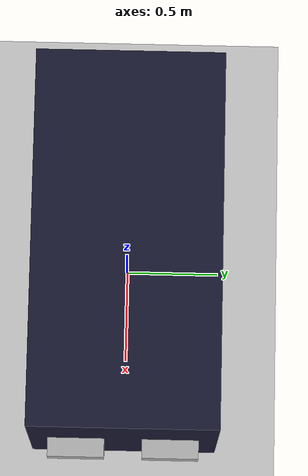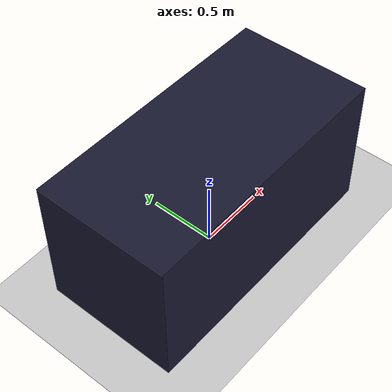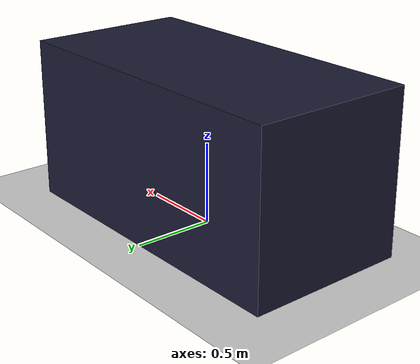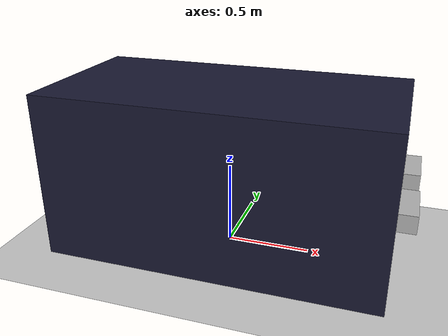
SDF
<sdf version="1.7">
 <world name="default">
  <gravity>0 0 -9.8</gravity>
  <magnetic_field>6e-06 2.3e-05 -4.2e-05</magnetic_field>
  <atmosphere type="adiabatic"/>
  <physics type="ode">
   <max_step_size>0.001</max_step_size>
   <real_time_factor>1</real_time_factor>
   <real_time_update_rate>1000</real_time_update_rate>
  </physics>
  <scene><ambient>0.4 0.4 0.4 1</ambient><background>0.7 0.7 0.7 1</background><shadows>1</shadows></scene>
  <audio><device>default</device></audio>
  <model name="ground_plane">
   <static>1</static>
   <link name="link">
    <collision name="collision">
     <geometry><plane><normal>0 0 1</normal><size>100 100</size></plane></geometry>
     <surface>
      <contact><collide_bitmask>65535</collide_bitmask></contact>
      <friction><ode><mu>100</mu><mu2>50</mu2></ode></friction>
     </surface>
    </collision>
    <visual name="visual">
     <cast_shadows>0</cast_shadows>
     <geometry><plane><normal>0 0 1</normal><size>100 100</size></plane></geometry>
     <material>
      <script><uri>file://media/materials/scripts/gazebo.material</uri><name>Gazebo/Grey</name></script>
     </material>
    </visual>
   </link>
   <pose>0.087493 -1.50833 0 0 -0 0</pose>
  </model>
  <light name="sun" type="directional">
   <pose>5.21475 24.8034 10 0 -0 0</pose>
   <diffuse>0.8 0.8 0.8 1</diffuse>
   <specular>0.2 0.2 0.2 1</specular>
   <attenuation>
    <range>1000</range>
    <constant>0.9</constant>
    <linear>0.01</linear>
    <quadratic>0.001</quadratic>
   </attenuation>
   <direction>-0.5 0.1 -0.9</direction>
  </light>
  <include><uri>box_test/model.sdf</uri><pose>0 0 0.5 0 0 0</pose></include>
 </world>
</sdf>

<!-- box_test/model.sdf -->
<sdf version='1.7'>
  <model name='box'>
<pose>0 0 0 0 0 0</pose>
    <gravity>false</gravity>
    <link name="link">
      <inertial>
        <mass>1.0</mass>
        <inertia>
          <ixx>0.083</ixx>
          <ixy>0.0</ixy>
          <ixz>0.0</ixz>
          <iyy>0.083</iyy>
          <iyz>0.0</iyz>
          <izz>0.083</izz>
        </inertia>
      </inertial>
      <collision name="collision">
        <geometry>
          <box>
            <size>2 1 1</size>
          </box>
        </geometry>
      </collision>
      <visual name="visual">
      <material> <!-- Wheel material -->
          <ambient>0.1 0.1 0.1 1</ambient>
          <diffuse>0.1 0.1 0.2 1</diffuse>
          <specular>0 0 0 0</specular>
          <emissive>1 0 0 1</emissive>
        </material>
        <geometry>
          <box>
            <size>2 1 1</size>
          </box>
        </geometry>
      </visual>

    </link>
    <link name="camera_right_link">
        <gravity>false</gravity>
                <collision name="collision">
          <geometry>
            <box>
              <size>0.1 0.3 0.1</size>
            </box>
          </geometry>
        </collision>
        <visual name="visual">
          <geometry>
            <box>
              <size>0.1 0.3 0.1</size>
            </box>
          </geometry>
        </visual>
        <pose >1.05 -0.25 0 0 0 0</pose>
        <sensor name="camera" type="camera">
          <camera>
            <horizontal_fov>1.047</horizontal_fov>
            <image>
              <width>1920</width>
              <height>1080</height>
            </image>
            <clip>
              <near>0.1</near>
              <far>100</far>
            </clip>
          </camera>
          <always_on>1</always_on>
          <update_rate>30</update_rate>
          <visualize>true</visualize>
          <topic>/camera/raw_right</topic>
        </sensor>
      </link>
    <link name="camera_left_link">

        <gravity>false</gravity>
            <collision name="collision">
          <geometry>
            <box>
              <size>0.1 0.3 0.1</size>
            </box>
          </geometry>
        </collision>
        <visual name="visual">
          <geometry>
            <box>
              <size>0.1 0.3 0.1</size>
            </box>
          </geometry>
        </visual>
        <pose >1.05 0.25 0 0 0 0</pose>
        <sensor name="camera" type="camera">
          <camera>
            <horizontal_fov>1.047</horizontal_fov>
            <image>
              <width>1920</width>
              <height>1080</height>
            </image>
            <clip>
              <near>0.1</near>
              <far>100</far>
            </clip>
          </camera>
          <always_on>1</always_on>
          <update_rate>30</update_rate>
          <visualize>true</visualize>
          <topic>/camera/raw_left</topic>
        </sensor>
    </link>
    <joint name="camera_glue_right" type="fixed">
      <parent>link</parent>
      <child>camera_right_link</child>
    </joint>
    <joint name="camera_glue_left" type="fixed">
      <parent>link</parent>
      <child>camera_left_link</child>
    </joint>

<plugin filename="movePlugin" name="move_Plugin::movePlugin"></plugin>

        </model>

</sdf>
